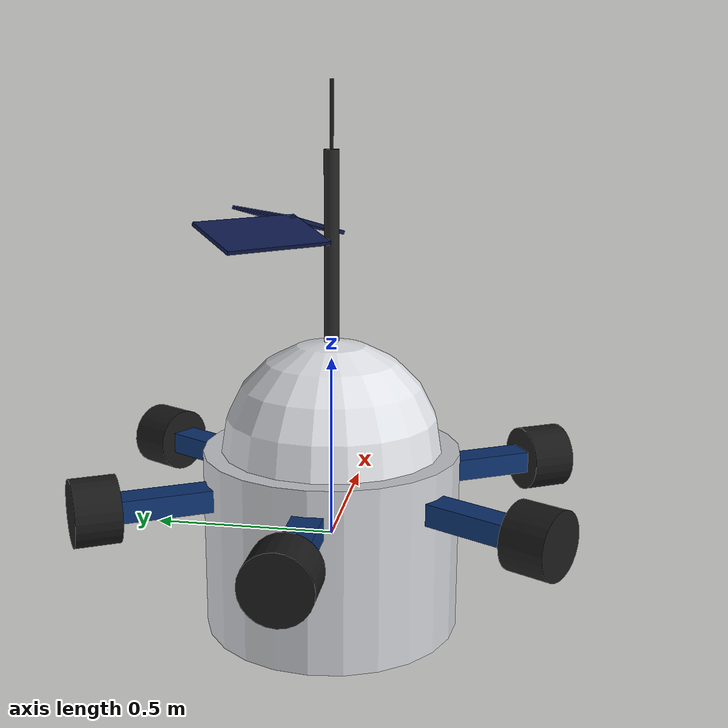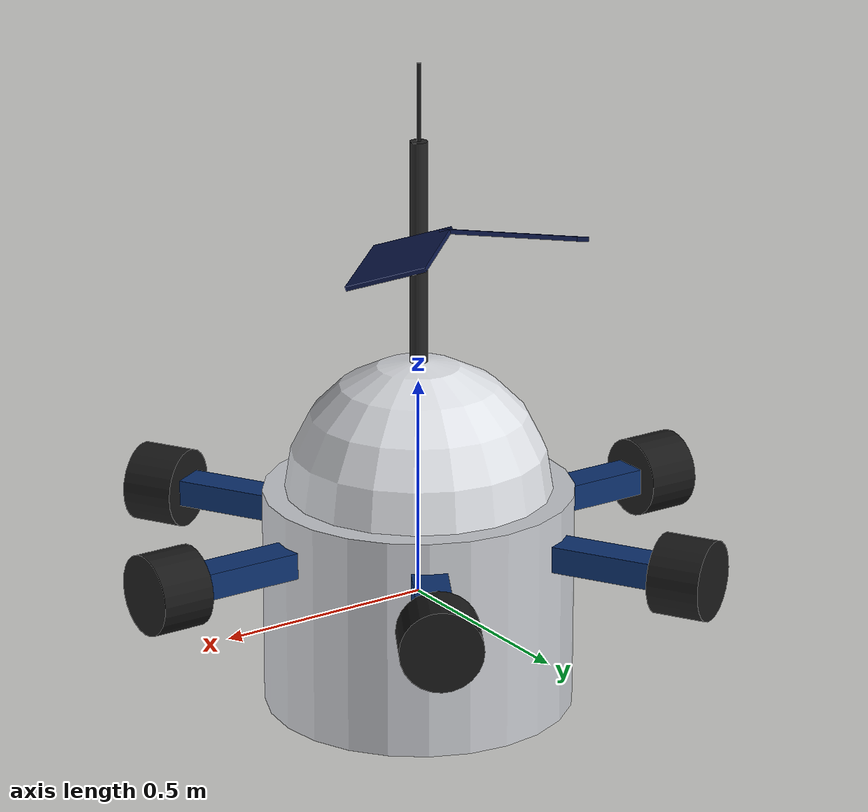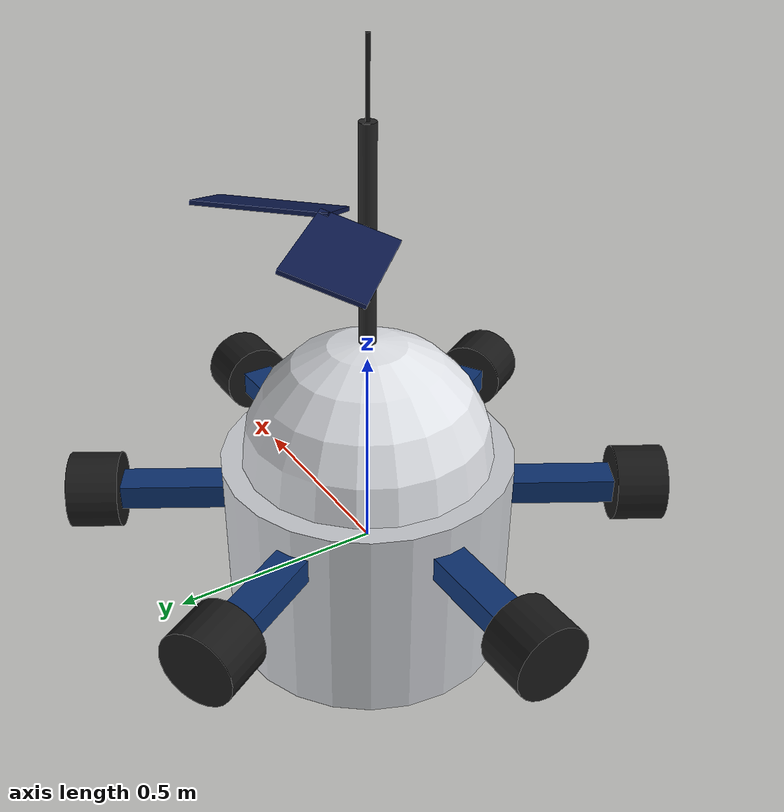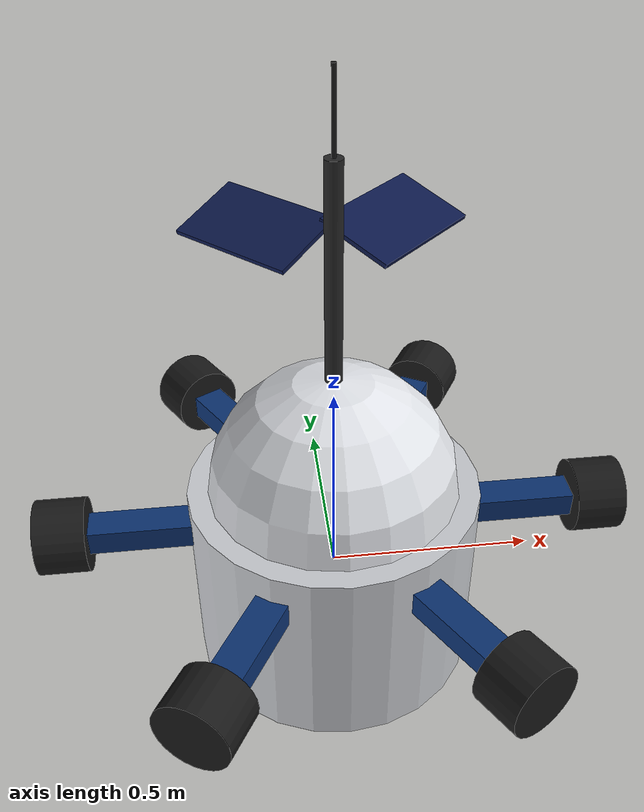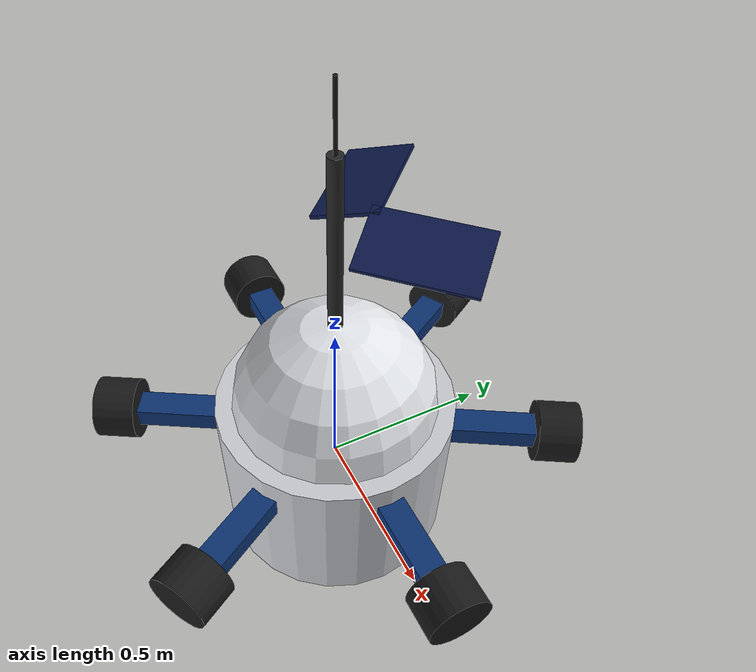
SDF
<?xml version="1.0"?>
<sdf version="1.8">
  <model name="observation_platform">
    <pose>0 0 0 0 0 0</pose>

    <link name="hull">
      <kinematic>true</kinematic>
      <gravity>false</gravity>
      <inertial>
        <mass>45</mass>
        <inertia><ixx>3.0</ixx><iyy>3.0</iyy><izz>2.0</izz><ixy>0</ixy><ixz>0</ixz><iyz>0</iyz></inertia>
      </inertial>
      <collision name="hull_collision">
        <geometry><cylinder><radius>0.35</radius><length>0.5</length></cylinder></geometry>
      </collision>
      <visual name="hull_body">
        <geometry><cylinder><radius>0.35</radius><length>0.5</length></cylinder></geometry>
        <material><ambient>0.75 0.76 0.78 1</ambient><diffuse>0.8 0.81 0.83 1</diffuse></material>
      </visual>
      <visual name="hull_dome">
        <pose>0 0 0.25 0 0 0</pose>
        <geometry><sphere><radius>0.3</radius></sphere></geometry>
        <material><ambient>0.85 0.86 0.88 1</ambient><diffuse>0.9 0.91 0.93 1</diffuse></material>
      </visual>
      <visual name="mast">
        <pose>0 0 0.75 0 0 0</pose>
        <geometry><cylinder><radius>0.02</radius><length>0.6</length></cylinder></geometry>
        <material><ambient>0.15 0.15 0.15 1</ambient></material>
      </visual>
      <visual name="antenna">
        <pose>0 0 1.1 0 0 0</pose>
        <geometry><cylinder><radius>0.005</radius><length>0.25</length></cylinder></geometry>
        <material><ambient>0.1 0.1 0.1 1</ambient></material>
      </visual>
      <visual name="solar_panel_left">
        <pose>0.15 0.15 0.85 0.3 0 0.785</pose>
        <geometry><box><size>0.3 0.18 0.01</size></box></geometry>
        <material><ambient>0.05 0.1 0.3 1</ambient></material>
      </visual>
      <visual name="solar_panel_right">
        <pose>-0.15 0.15 0.85 0.3 0 -0.785</pose>
        <geometry><box><size>0.3 0.18 0.01</size></box></geometry>
        <material><ambient>0.05 0.1 0.3 1</ambient></material>
      </visual>

      <sensor name="imu_sensor" type="imu">
        <always_on>true</always_on><update_rate>50</update_rate><topic>imu</topic>
      </sensor>
      <sensor name="front_camera" type="camera">
        <pose>0.34 0 0.1 0 0 0</pose>
        <camera>
          <horizontal_fov>1.4</horizontal_fov>
          <image><width>640</width><height>480</height></image>
          <clip><near>0.1</near><far>50</far></clip>
        </camera>
        <always_on>true</always_on><update_rate>15</update_rate><topic>camera/image</topic>
      </sensor>
      <sensor name="front_lidar" type="gpu_lidar">
        <pose>0.34 0 0.05 0 0 0</pose>
        <lidar>
          <scan><horizontal><samples>180</samples><resolution>1</resolution>
            <min_angle>-1.396</min_angle><max_angle>1.396</max_angle></horizontal></scan>
          <range><min>0.2</min><max>25</max><resolution>0.05</resolution></range>
        </lidar>
        <always_on>true</always_on><update_rate>10</update_rate><topic>scan</topic>
      </sensor>
    </link>

    <link name="arm_0"><kinematic>true</kinematic><gravity>false</gravity><pose>0.40 0 0.15 0 0 0</pose>
      <visual name="v"><geometry><box><size>0.5 0.08 0.06</size></box></geometry>
        <material><ambient>0.05 0.2 0.45 1</ambient></material></visual></link>
    <joint name="arm_0_joint" type="fixed"><parent>hull</parent><child>arm_0</child></joint>
    <link name="thruster_0"><kinematic>true</kinematic><gravity>false</gravity><pose>0.65 0 0.15 0 1.5708 0</pose>
      <visual name="v"><geometry><cylinder><radius>0.09</radius><length>0.12</length></cylinder></geometry>
        <material><ambient>0.1 0.1 0.1 1</ambient></material></visual></link>
    <joint name="thruster_0_joint" type="fixed"><parent>arm_0</parent><child>thruster_0</child></joint>

    <link name="arm_1"><kinematic>true</kinematic><gravity>false</gravity><pose>0.20 0.3464 0.15 0 0 1.047</pose>
      <visual name="v"><geometry><box><size>0.5 0.08 0.06</size></box></geometry>
        <material><ambient>0.05 0.2 0.45 1</ambient></material></visual></link>
    <joint name="arm_1_joint" type="fixed"><parent>hull</parent><child>arm_1</child></joint>
    <link name="thruster_1"><kinematic>true</kinematic><gravity>false</gravity><pose>0.325 0.5629 0.15 0 1.5708 1.047</pose>
      <visual name="v"><geometry><cylinder><radius>0.09</radius><length>0.12</length></cylinder></geometry>
        <material><ambient>0.1 0.1 0.1 1</ambient></material></visual></link>
    <joint name="thruster_1_joint" type="fixed"><parent>arm_1</parent><child>thruster_1</child></joint>

    <link name="arm_2"><kinematic>true</kinematic><gravity>false</gravity><pose>-0.20 0.3464 0.15 0 0 2.094</pose>
      <visual name="v"><geometry><box><size>0.5 0.08 0.06</size></box></geometry>
        <material><ambient>0.05 0.2 0.45 1</ambient></material></visual></link>
    <joint name="arm_2_joint" type="fixed"><parent>hull</parent><child>arm_2</child></joint>
    <link name="thruster_2"><kinematic>true</kinematic><gravity>false</gravity><pose>-0.325 0.5629 0.15 0 1.5708 2.094</pose>
      <visual name="v"><geometry><cylinder><radius>0.09</radius><length>0.12</length></cylinder></geometry>
        <material><ambient>0.1 0.1 0.1 1</ambient></material></visual></link>
    <joint name="thruster_2_joint" type="fixed"><parent>arm_2</parent><child>thruster_2</child></joint>

    <link name="arm_3"><kinematic>true</kinematic><gravity>false</gravity><pose>-0.40 0 0.15 0 0 3.1416</pose>
      <visual name="v"><geometry><box><size>0.5 0.08 0.06</size></box></geometry>
        <material><ambient>0.05 0.2 0.45 1</ambient></material></visual></link>
    <joint name="arm_3_joint" type="fixed"><parent>hull</parent><child>arm_3</child></joint>
    <link name="thruster_3"><kinematic>true</kinematic><gravity>false</gravity><pose>-0.65 0 0.15 0 1.5708 3.1416</pose>
      <visual name="v"><geometry><cylinder><radius>0.09</radius><length>0.12</length></cylinder></geometry>
        <material><ambient>0.1 0.1 0.1 1</ambient></material></visual></link>
    <joint name="thruster_3_joint" type="fixed"><parent>arm_3</parent><child>thruster_3</child></joint>

    <link name="arm_4"><kinematic>true</kinematic><gravity>false</gravity><pose>-0.20 -0.3464 0.15 0 0 4.189</pose>
      <visual name="v"><geometry><box><size>0.5 0.08 0.06</size></box></geometry>
        <material><ambient>0.05 0.2 0.45 1</ambient></material></visual></link>
    <joint name="arm_4_joint" type="fixed"><parent>hull</parent><child>arm_4</child></joint>
    <link name="thruster_4"><kinematic>true</kinematic><gravity>false</gravity><pose>-0.325 -0.5629 0.15 0 1.5708 4.189</pose>
      <visual name="v"><geometry><cylinder><radius>0.09</radius><length>0.12</length></cylinder></geometry>
        <material><ambient>0.1 0.1 0.1 1</ambient></material></visual></link>
    <joint name="thruster_4_joint" type="fixed"><parent>arm_4</parent><child>thruster_4</child></joint>

    <link name="arm_5"><kinematic>true</kinematic><gravity>false</gravity><pose>0.20 -0.3464 0.15 0 0 5.236</pose>
      <visual name="v"><geometry><box><size>0.5 0.08 0.06</size></box></geometry>
        <material><ambient>0.05 0.2 0.45 1</ambient></material></visual></link>
    <joint name="arm_5_joint" type="fixed"><parent>hull</parent><child>arm_5</child></joint>
    <link name="thruster_5"><kinematic>true</kinematic><gravity>false</gravity><pose>0.325 -0.5629 0.15 0 1.5708 5.236</pose>
      <visual name="v"><geometry><cylinder><radius>0.09</radius><length>0.12</length></cylinder></geometry>
        <material><ambient>0.1 0.1 0.1 1</ambient></material></visual></link>
    <joint name="thruster_5_joint" type="fixed"><parent>arm_5</parent><child>thruster_5</child></joint>

    <plugin filename="ignition-gazebo-velocity-control-system" name="ignition::gazebo::systems::VelocityControl">
      <link_name>hull</link_name>
    </plugin>
    <plugin filename="ignition-gazebo-odometry-publisher-system" name="ignition::gazebo::systems::OdometryPublisher">
      <odom_frame>observation_platform/odom</odom_frame>
      <robot_base_frame>observation_platform</robot_base_frame>
      <odom_publish_frequency>20</odom_publish_frequency>
    </plugin>
  </model>
</sdf>
